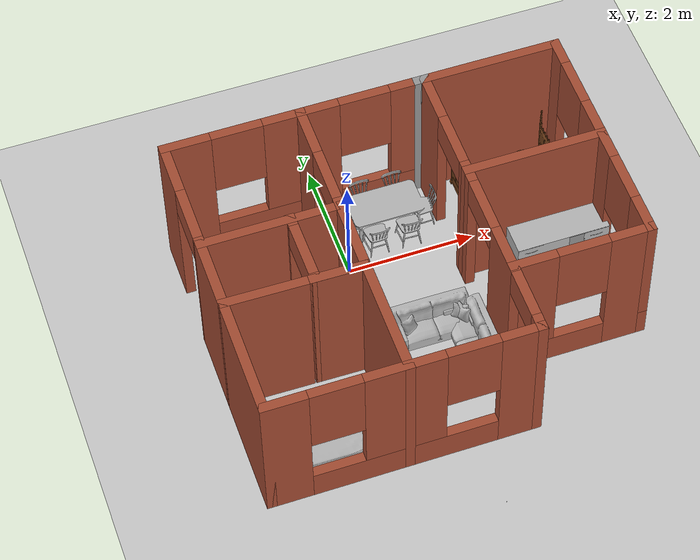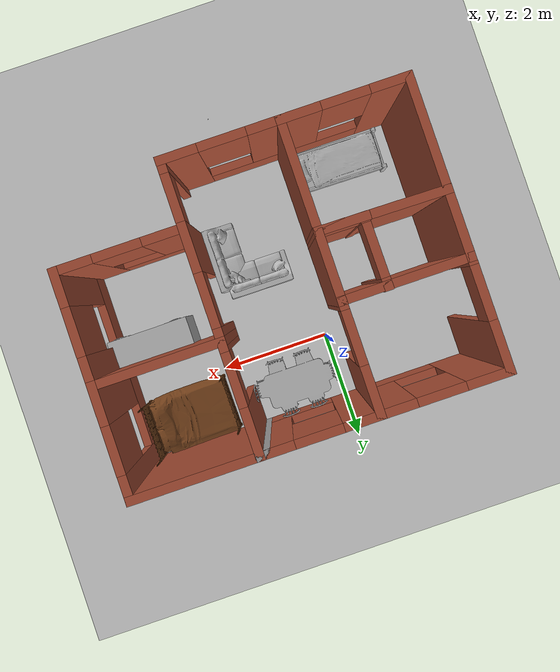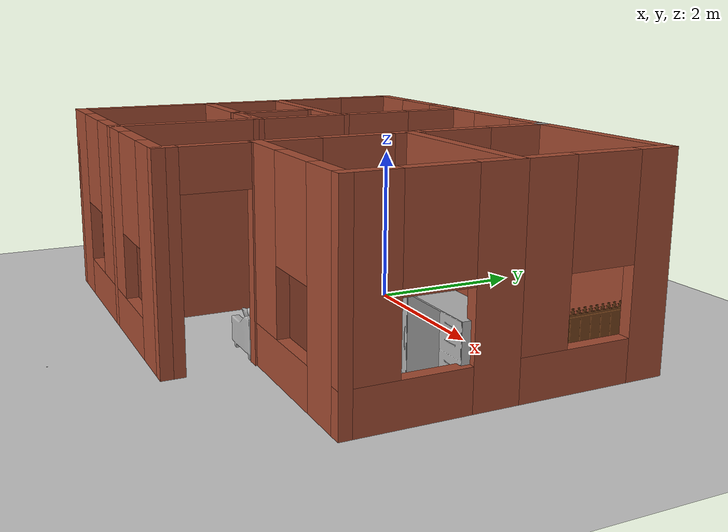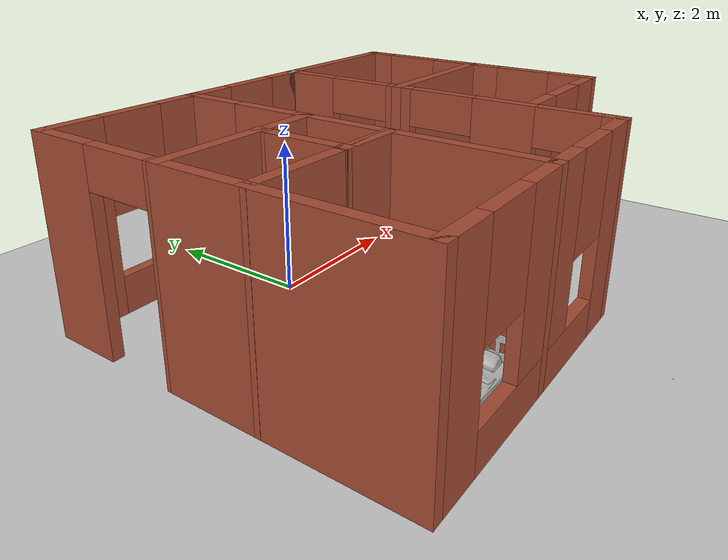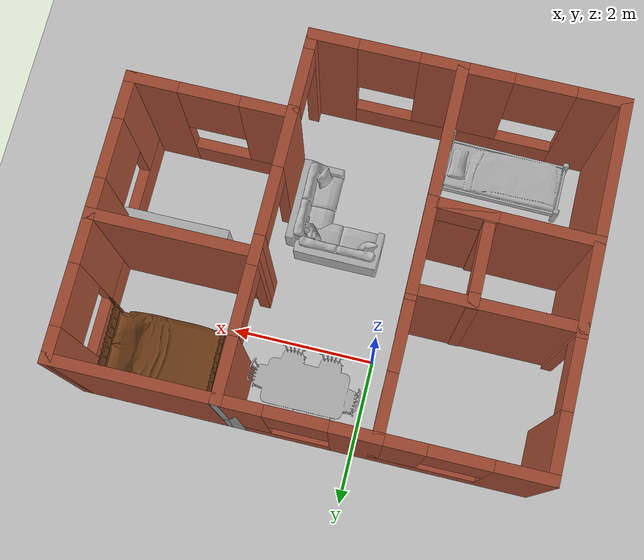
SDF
<sdf version="1.7">
 <world name="default">
  <light name="sun" type="directional">
   <pose>0 0 10 0 -0 0</pose>
   <diffuse>0.8 0.8 0.8 1</diffuse>
   <specular>0.2 0.2 0.2 1</specular>
   <attenuation>
    <range>1000</range>
    <constant>0.9</constant>
    <linear>0.01</linear>
    <quadratic>0.001</quadratic>
   </attenuation>
   <direction>-0.5 0.1 -0.9</direction>
   <spot><inner_angle>0</inner_angle><outer_angle>0</outer_angle><falloff>0</falloff></spot>
  </light>
  <model name="ground_plane">
   <static>1</static>
   <link name="link">
    <collision name="collision">
     <geometry><plane><normal>0 0 1</normal><size>100 100</size></plane></geometry>
     <surface><friction><ode><mu>100</mu><mu2>50</mu2></ode></friction></surface>
    </collision>
    <visual name="visual">
     <cast_shadows>0</cast_shadows>
     <geometry><plane><normal>0 0 1</normal><size>100 100</size></plane></geometry>
     <material>
      <script><uri>file://media/materials/scripts/gazebo.material</uri><name>Gazebo/Grey</name></script>
     </material>
    </visual>
   </link>
  </model>
  <gravity>0 0 -9.8</gravity>
  <magnetic_field>6e-06 2.3e-05 -4.2e-05</magnetic_field>
  <atmosphere type="adiabatic"/>
  <physics type="ode">
   <max_step_size>0.001</max_step_size>
   <real_time_factor>1</real_time_factor>
   <real_time_update_rate>1000</real_time_update_rate>
  </physics>
  <scene><ambient>0.4 0.4 0.4 1</ambient><background>0.7 0.7 0.7 1</background><shadows>1</shadows></scene>
  <audio><device>default</device></audio>
  <spherical_coordinates>
   <surface_model>EARTH_WGS84</surface_model>
   <latitude_deg>0</latitude_deg>
   <longitude_deg>0</longitude_deg>
   <elevation>0</elevation>
   <heading_deg>0</heading_deg>
  </spherical_coordinates>
  <model name="2house">
   <pose>0.680679 -1.14984 0 0 -0 0</pose>
   <link name="Wall_0">
    <collision name="Wall_0_Collision">
     <geometry><box><size>2 0.15 2.5</size></box></geometry>
     <pose>0 0 1.25 0 -0 0</pose>
    </collision>
    <visual name="Wall_0_Visual">
     <pose>0 0 1.25 0 -0 0</pose>
     <geometry><box><size>2 0.15 2.5</size></box></geometry>
     <material>
      <script><uri>file://media/materials/scripts/gazebo.material</uri><name>Gazebo/Bricks</name></script>
      <ambient>1 1 1 1</ambient>
     </material>
     <meta><layer>0</layer></meta>
    </visual>
    <pose>-3.07947 -1.47497 0 0 -0 -1.5708</pose>
   </link>
   <link name="Wall_1">
    <pose>-2.02947 -2.39997 0 0 -0 0</pose>
    <visual name="Wall_1_Visual_0">
     <pose>-0.770774 0 1.25 0 -0 0</pose>
     <geometry><box><size>0.708452 0.15 2.5</size></box></geometry>
     <material>
      <script><uri>file://media/materials/scripts/gazebo.material</uri><name>Gazebo/Bricks</name></script>
      <ambient>1 1 1 1</ambient>
     </material>
     <meta><layer>0</layer></meta>
    </visual>
    <collision name="Wall_1_Collision_0">
     <geometry><box><size>0.708452 0.15 2.5</size></box></geometry>
     <pose>-0.770774 0 1.25 0 -0 0</pose>
    </collision>
    <visual name="Wall_1_Visual_1">
     <pose>0.354226 0 0.25 0 -0 0</pose>
     <geometry><box><size>1.54155 0.15 0.5</size></box></geometry>
     <material>
      <script><uri>file://media/materials/scripts/gazebo.material</uri><name>Gazebo/Bricks</name></script>
      <ambient>1 1 1 1</ambient>
     </material>
     <meta><layer>0</layer></meta>
    </visual>
    <collision name="Wall_1_Collision_1">
     <geometry><box><size>1.54155 0.15 0.5</size></box></geometry>
     <pose>0.354226 0 0.25 0 -0 0</pose>
    </collision>
    <visual name="Wall_1_Visual_2">
     <pose>0.754226 0 1.5 0 -0 0</pose>
     <geometry><box><size>0.741548 0.15 2</size></box></geometry>
     <material>
      <script><uri>file://media/materials/scripts/gazebo.material</uri><name>Gazebo/Bricks</name></script>
      <ambient>1 1 1 1</ambient>
     </material>
     <meta><layer>0</layer></meta>
    </visual>
    <collision name="Wall_1_Collision_2">
     <geometry><box><size>0.741548 0.15 2</size></box></geometry>
     <pose>0.754226 0 1.5 0 -0 0</pose>
    </collision>
    <visual name="Wall_1_Visual_3">
     <pose>-0.016548 0 1.9 0 -0 0</pose>
     <geometry><box><size>0.8 0.15 1.2</size></box></geometry>
     <material>
      <script><uri>file://media/materials/scripts/gazebo.material</uri><name>Gazebo/Bricks</name></script>
      <ambient>1 1 1 1</ambient>
     </material>
     <meta><layer>0</layer></meta>
    </visual>
    <collision name="Wall_1_Collision_3">
     <geometry><box><size>0.8 0.15 1.2</size></box></geometry>
     <pose>-0.016548 0 1.9 0 -0 0</pose>
    </collision>
   </link>
   <link name="Wall_17">
    <collision name="Wall_17_Collision">
     <geometry><box><size>1.25 0.15 2.5</size></box></geometry>
     <pose>0 0 1.25 0 -0 0</pose>
    </collision>
    <visual name="Wall_17_Visual">
     <pose>0 0 1.25 0 -0 0</pose>
     <geometry><box><size>1.25 0.15 2.5</size></box></geometry>
     <material>
      <script><uri>file://media/materials/scripts/gazebo.material</uri><name>Gazebo/Bricks</name></script>
      <ambient>1 1 1 1</ambient>
     </material>
     <meta><layer>0</layer></meta>
    </visual>
    <pose>-3.07947 2.7e-05 0 0 -0 1.5708</pose>
   </link>
   <link name="Wall_18">
    <collision name="Wall_18_Collision">
     <geometry><box><size>2.25 0.15 2.5</size></box></geometry>
     <pose>0 0 1.25 0 -0 0</pose>
    </collision>
    <visual name="Wall_18_Visual">
     <pose>0 0 1.25 0 -0 0</pose>
     <geometry><box><size>2.25 0.15 2.5</size></box></geometry>
     <material>
      <script><uri>file://media/materials/scripts/gazebo.material</uri><name>Gazebo/Bricks</name></script>
      <ambient>1 1 1 1</ambient>
     </material>
     <meta><layer>0</layer></meta>
    </visual>
    <pose>-2.02947 0.550027 0 0 -0 0</pose>
   </link>
   <link name="Wall_19">
    <collision name="Wall_19_Collision">
     <geometry><box><size>1.28018 0.15 2.5</size></box></geometry>
     <pose>0 0 1.25 0 -0 0</pose>
    </collision>
    <visual name="Wall_19_Visual">
     <pose>0 0 1.25 0 -0 0</pose>
     <geometry><box><size>1.28018 0.15 2.5</size></box></geometry>
     <material>
      <script><uri>file://media/materials/scripts/gazebo.material</uri><name>Gazebo/Bricks</name></script>
      <ambient>1 1 1 1</ambient>
     </material>
     <meta><layer>0</layer></meta>
    </visual>
    <pose>-0.979468 -0.014973 0 0 -0 -1.5708</pose>
   </link>
   <link name="Wall_2">
    <collision name="Wall_2_Collision">
     <geometry><box><size>1.97011 0.15 2.5</size></box></geometry>
     <pose>0 0 1.25 0 -0 0</pose>
    </collision>
    <visual name="Wall_2_Visual">
     <pose>0 0 1.25 0 -0 0</pose>
     <geometry><box><size>1.97011 0.15 2.5</size></box></geometry>
     <material>
      <script><uri>file://media/materials/scripts/gazebo.material</uri><name>Gazebo/Bricks</name></script>
      <ambient>1 1 1 1</ambient>
     </material>
     <meta><layer>0</layer></meta>
    </visual>
    <pose>-0.979468 -1.48997 0 0 -0 1.5708</pose>
   </link>
   <link name="Wall_20">
    <collision name="Wall_20_Collision">
     <geometry><box><size>0.890068 0.15 2.5</size></box></geometry>
     <pose>0 0 1.25 0 -0 0</pose>
    </collision>
    <visual name="Wall_20_Visual">
     <pose>0 0 1.25 0 -0 0</pose>
     <geometry><box><size>0.890068 0.15 2.5</size></box></geometry>
     <material>
      <script><uri>file://media/materials/scripts/gazebo.material</uri><name>Gazebo/Bricks</name></script>
      <ambient>1 1 1 1</ambient>
     </material>
     <meta><layer>0</layer></meta>
    </visual>
    <pose>-1.35947 -0.574973 0 0 -0 3.12808</pose>
   </link>
   <link name="Wall_21">
    <pose>-1.72447 -0.004973 0 0 -0 1.57965</pose>
    <visual name="Wall_21_Visual_0">
     <pose>-0.55431 0 1.25 0 -0 0</pose>
     <geometry><box><size>0.171424 0.15 2.5</size></box></geometry>
     <material>
      <script><uri>file://media/materials/scripts/gazebo.material</uri><name>Gazebo/Bricks</name></script>
      <ambient>1 1 1 1</ambient>
     </material>
     <meta><layer>0</layer></meta>
    </visual>
    <collision name="Wall_21_Collision_0">
     <geometry><box><size>0.171424 0.15 2.5</size></box></geometry>
     <pose>-0.55431 0 1.25 0 -0 0</pose>
    </collision>
    <visual name="Wall_21_Visual_1">
     <pose>0.535712 0 1.25 0 -0 0</pose>
     <geometry><box><size>0.20862 0.15 2.5</size></box></geometry>
     <material>
      <script><uri>file://media/materials/scripts/gazebo.material</uri><name>Gazebo/Bricks</name></script>
      <ambient>1 1 1 1</ambient>
     </material>
     <meta><layer>0</layer></meta>
    </visual>
    <collision name="Wall_21_Collision_1">
     <geometry><box><size>0.20862 0.15 2.5</size></box></geometry>
     <pose>0.535712 0 1.25 0 -0 0</pose>
    </collision>
    <visual name="Wall_21_Visual_2">
     <pose>-0.018598 0 2.25 0 -0 0</pose>
     <geometry><box><size>0.9 0.15 0.5</size></box></geometry>
     <material>
      <script><uri>file://media/materials/scripts/gazebo.material</uri><name>Gazebo/Bricks</name></script>
      <ambient>1 1 1 1</ambient>
     </material>
     <meta><layer>0</layer></meta>
    </visual>
    <collision name="Wall_21_Collision_2">
     <geometry><box><size>0.9 0.15 0.5</size></box></geometry>
     <pose>-0.018598 0 2.25 0 -0 0</pose>
    </collision>
   </link>
   <link name="Wall_23">
    <pose>-3.07947 1.47503 0 0 -0 1.5708</pose>
    <visual name="Wall_23_Visual_0">
     <pose>-0.89882 0 1.25 0 -0 0</pose>
     <geometry><box><size>0.202361 0.15 2.5</size></box></geometry>
     <material>
      <script><uri>file://media/materials/scripts/gazebo.material</uri><name>Gazebo/Bricks</name></script>
      <ambient>1 1 1 1</ambient>
     </material>
     <meta><layer>0</layer></meta>
    </visual>
    <collision name="Wall_23_Collision_0">
     <geometry><box><size>0.202361 0.15 2.5</size></box></geometry>
     <pose>-0.89882 0 1.25 0 -0 0</pose>
    </collision>
    <visual name="Wall_23_Visual_1">
     <pose>0.55118 0 1.25 0 -0 0</pose>
     <geometry><box><size>0.897639 0.15 2.5</size></box></geometry>
     <material>
      <script><uri>file://media/materials/scripts/gazebo.material</uri><name>Gazebo/Bricks</name></script>
      <ambient>1 1 1 1</ambient>
     </material>
     <meta><layer>0</layer></meta>
    </visual>
    <collision name="Wall_23_Collision_1">
     <geometry><box><size>0.897639 0.15 2.5</size></box></geometry>
     <pose>0.55118 0 1.25 0 -0 0</pose>
    </collision>
    <visual name="Wall_23_Visual_2">
     <pose>-0.347639 0 2.25 0 -0 0</pose>
     <geometry><box><size>0.9 0.15 0.5</size></box></geometry>
     <material>
      <script><uri>file://media/materials/scripts/gazebo.material</uri><name>Gazebo/Bricks</name></script>
      <ambient>1 1 1 1</ambient>
     </material>
     <meta><layer>0</layer></meta>
    </visual>
    <collision name="Wall_23_Collision_2">
     <geometry><box><size>0.9 0.15 0.5</size></box></geometry>
     <pose>-0.347639 0 2.25 0 -0 0</pose>
    </collision>
   </link>
   <link name="Wall_25">
    <pose>-2.02947 2.40003 0 0 -0 0</pose>
    <visual name="Wall_25_Visual_0">
     <pose>-0.735774 0 1.25 0 -0 0</pose>
     <geometry><box><size>0.778452 0.15 2.5</size></box></geometry>
     <material>
      <script><uri>file://media/materials/scripts/gazebo.material</uri><name>Gazebo/Bricks</name></script>
      <ambient>1 1 1 1</ambient>
     </material>
     <meta><layer>0</layer></meta>
    </visual>
    <collision name="Wall_25_Collision_0">
     <geometry><box><size>0.778452 0.15 2.5</size></box></geometry>
     <pose>-0.735774 0 1.25 0 -0 0</pose>
    </collision>
    <visual name="Wall_25_Visual_1">
     <pose>0.389226 0 0.25 0 -0 0</pose>
     <geometry><box><size>1.47155 0.15 0.5</size></box></geometry>
     <material>
      <script><uri>file://media/materials/scripts/gazebo.material</uri><name>Gazebo/Bricks</name></script>
      <ambient>1 1 1 1</ambient>
     </material>
     <meta><layer>0</layer></meta>
    </visual>
    <collision name="Wall_25_Collision_1">
     <geometry><box><size>1.47155 0.15 0.5</size></box></geometry>
     <pose>0.389226 0 0.25 0 -0 0</pose>
    </collision>
    <visual name="Wall_25_Visual_2">
     <pose>0.789226 0 1.5 0 -0 0</pose>
     <geometry><box><size>0.671548 0.15 2</size></box></geometry>
     <material>
      <script><uri>file://media/materials/scripts/gazebo.material</uri><name>Gazebo/Bricks</name></script>
      <ambient>1 1 1 1</ambient>
     </material>
     <meta><layer>0</layer></meta>
    </visual>
    <collision name="Wall_25_Collision_2">
     <geometry><box><size>0.671548 0.15 2</size></box></geometry>
     <pose>0.789226 0 1.5 0 -0 0</pose>
    </collision>
    <visual name="Wall_25_Visual_3">
     <pose>0.053452 0 1.9 0 -0 0</pose>
     <geometry><box><size>0.8 0.15 1.2</size></box></geometry>
     <material>
      <script><uri>file://media/materials/scripts/gazebo.material</uri><name>Gazebo/Bricks</name></script>
      <ambient>1 1 1 1</ambient>
     </material>
     <meta><layer>0</layer></meta>
    </visual>
    <collision name="Wall_25_Collision_3">
     <geometry><box><size>0.8 0.15 1.2</size></box></geometry>
     <pose>0.053452 0 1.9 0 -0 0</pose>
    </collision>
   </link>
   <link name="Wall_26">
    <pose>-0.979468 1.47503 0 0 -0 -1.5708</pose>
    <visual name="Wall_26_Visual_0">
     <pose>-0.56118 0 1.25 0 -0 0</pose>
     <geometry><box><size>0.877639 0.15 2.5</size></box></geometry>
     <material>
      <script><uri>file://media/materials/scripts/gazebo.material</uri><name>Gazebo/Bricks</name></script>
      <ambient>1 1 1 1</ambient>
     </material>
     <meta><layer>0</layer></meta>
    </visual>
    <collision name="Wall_26_Collision_0">
     <geometry><box><size>0.877639 0.15 2.5</size></box></geometry>
     <pose>-0.56118 0 1.25 0 -0 0</pose>
    </collision>
    <visual name="Wall_26_Visual_1">
     <pose>0.88882 0 1.25 0 -0 0</pose>
     <geometry><box><size>0.222361 0.15 2.5</size></box></geometry>
     <material>
      <script><uri>file://media/materials/scripts/gazebo.material</uri><name>Gazebo/Bricks</name></script>
      <ambient>1 1 1 1</ambient>
     </material>
     <meta><layer>0</layer></meta>
    </visual>
    <collision name="Wall_26_Collision_1">
     <geometry><box><size>0.222361 0.15 2.5</size></box></geometry>
     <pose>0.88882 0 1.25 0 -0 0</pose>
    </collision>
    <visual name="Wall_26_Visual_2">
     <pose>0.327639 0 2.25 0 -0 0</pose>
     <geometry><box><size>0.9 0.15 0.5</size></box></geometry>
     <material>
      <script><uri>file://media/materials/scripts/gazebo.material</uri><name>Gazebo/Bricks</name></script>
      <ambient>1 1 1 1</ambient>
     </material>
     <meta><layer>0</layer></meta>
    </visual>
    <collision name="Wall_26_Collision_2">
     <geometry><box><size>0.9 0.15 0.5</size></box></geometry>
     <pose>0.327639 0 2.25 0 -0 0</pose>
    </collision>
   </link>
   <link name="Wall_3">
    <pose>-2.02947 -0.564973 0 0 -0 3.12731</pose>
    <visual name="Wall_3_Visual_0">
     <pose>-1.11431 0 1.25 0 -0 0</pose>
     <geometry><box><size>0.021588 0.15 2.5</size></box></geometry>
     <material>
      <script><uri>file://media/materials/scripts/gazebo.material</uri><name>Gazebo/Bricks</name></script>
      <ambient>1 1 1 1</ambient>
     </material>
     <meta><layer>0</layer></meta>
    </visual>
    <collision name="Wall_3_Collision_0">
     <geometry><box><size>0.021588 0.15 2.5</size></box></geometry>
     <pose>-1.11431 0 1.25 0 -0 0</pose>
    </collision>
    <visual name="Wall_3_Visual_1">
     <pose>0.460794 0 1.25 0 -0 0</pose>
     <geometry><box><size>1.32863 0.15 2.5</size></box></geometry>
     <material>
      <script><uri>file://media/materials/scripts/gazebo.material</uri><name>Gazebo/Bricks</name></script>
      <ambient>1 1 1 1</ambient>
     </material>
     <meta><layer>0</layer></meta>
    </visual>
    <collision name="Wall_3_Collision_1">
     <geometry><box><size>1.32863 0.15 2.5</size></box></geometry>
     <pose>0.460794 0 1.25 0 -0 0</pose>
    </collision>
    <visual name="Wall_3_Visual_2">
     <pose>-0.653519 0 2.25 0 -0 0</pose>
     <geometry><box><size>0.9 0.15 0.5</size></box></geometry>
     <material>
      <script><uri>file://media/materials/scripts/gazebo.material</uri><name>Gazebo/Bricks</name></script>
      <ambient>1 1 1 1</ambient>
     </material>
     <meta><layer>0</layer></meta>
    </visual>
    <collision name="Wall_3_Collision_2">
     <geometry><box><size>0.9 0.15 0.5</size></box></geometry>
     <pose>-0.653519 0 2.25 0 -0 0</pose>
    </collision>
   </link>
   <link name="Wall_30">
    <pose>-0.054468 2.40003 0 0 -0 0</pose>
    <visual name="Wall_30_Visual_0">
     <pose>-0.665774 0 1.25 0 -0 0</pose>
     <geometry><box><size>0.668452 0.15 2.5</size></box></geometry>
     <material>
      <script><uri>file://media/materials/scripts/gazebo.material</uri><name>Gazebo/Bricks</name></script>
      <ambient>1 1 1 1</ambient>
     </material>
     <meta><layer>0</layer></meta>
    </visual>
    <collision name="Wall_30_Collision_0">
     <geometry><box><size>0.668452 0.15 2.5</size></box></geometry>
     <pose>-0.665774 0 1.25 0 -0 0</pose>
    </collision>
    <visual name="Wall_30_Visual_1">
     <pose>0.334226 0 0.25 0 -0 0</pose>
     <geometry><box><size>1.33155 0.15 0.5</size></box></geometry>
     <material>
      <script><uri>file://media/materials/scripts/gazebo.material</uri><name>Gazebo/Bricks</name></script>
      <ambient>1 1 1 1</ambient>
     </material>
     <meta><layer>0</layer></meta>
    </visual>
    <collision name="Wall_30_Collision_1">
     <geometry><box><size>1.33155 0.15 0.5</size></box></geometry>
     <pose>0.334226 0 0.25 0 -0 0</pose>
    </collision>
    <visual name="Wall_30_Visual_2">
     <pose>0.734226 0 1.5 0 -0 0</pose>
     <geometry><box><size>0.531548 0.15 2</size></box></geometry>
     <material>
      <script><uri>file://media/materials/scripts/gazebo.material</uri><name>Gazebo/Bricks</name></script>
      <ambient>1 1 1 1</ambient>
     </material>
     <meta><layer>0</layer></meta>
    </visual>
    <collision name="Wall_30_Collision_2">
     <geometry><box><size>0.531548 0.15 2</size></box></geometry>
     <pose>0.734226 0 1.5 0 -0 0</pose>
    </collision>
    <visual name="Wall_30_Visual_3">
     <pose>0.068452 0 1.9 0 -0 0</pose>
     <geometry><box><size>0.8 0.15 1.2</size></box></geometry>
     <material>
      <script><uri>file://media/materials/scripts/gazebo.material</uri><name>Gazebo/Bricks</name></script>
      <ambient>1 1 1 1</ambient>
     </material>
     <meta><layer>0</layer></meta>
    </visual>
    <collision name="Wall_30_Collision_3">
     <geometry><box><size>0.8 0.15 1.2</size></box></geometry>
     <pose>0.068452 0 1.9 0 -0 0</pose>
    </collision>
   </link>
   <link name="Wall_31">
    <collision name="Wall_31_Collision">
     <geometry><box><size>0.25 0.15 2.5</size></box></geometry>
     <pose>0 0 1.25 0 -0 0</pose>
    </collision>
    <visual name="Wall_31_Visual">
     <pose>0 0 1.25 0 -0 0</pose>
     <geometry><box><size>0.25 0.15 2.5</size></box></geometry>
     <material>
      <script><uri>file://media/materials/scripts/gazebo.material</uri><name>Gazebo/Grey</name></script>
      <ambient>1 1 1 1</ambient>
     </material>
     <meta><layer>0</layer></meta>
    </visual>
    <pose>0.920532 2.40003 0 0 -0 0</pose>
   </link>
   <link name="Wall_34">
    <collision name="Wall_34_Collision">
     <geometry><box><size>0.25 0.15 2.5</size></box></geometry>
     <pose>0 0 1.25 0 -0 0</pose>
    </collision>
    <visual name="Wall_34_Visual">
     <pose>0 0 1.25 0 -0 0</pose>
     <geometry><box><size>0.25 0.15 2.5</size></box></geometry>
     <material>
      <script><uri>file://media/materials/scripts/gazebo.material</uri><name>Gazebo/Bricks</name></script>
      <ambient>1 1 1 1</ambient>
     </material>
     <meta><layer>0</layer></meta>
    </visual>
    <pose>0.920532 2.40003 0 0 -0 0</pose>
   </link>
   <link name="Wall_35">
    <collision name="Wall_35_Collision">
     <geometry><box><size>0.16 0.15 2.5</size></box></geometry>
     <pose>0 0 1.25 0 -0 0</pose>
    </collision>
    <visual name="Wall_35_Visual">
     <pose>0 0 1.25 0 -0 0</pose>
     <geometry><box><size>0.16 0.15 2.5</size></box></geometry>
     <material>
      <script><uri>file://media/materials/scripts/gazebo.material</uri><name>Gazebo/Grey</name></script>
      <ambient>1 1 1 1</ambient>
     </material>
     <meta><layer>0</layer></meta>
    </visual>
    <pose>0.975532 2.40003 0 0 -0 0</pose>
   </link>
   <link name="Wall_36">
    <pose>0.980532 2.7e-05 0 0 -0 -1.5708</pose>
    <visual name="Wall_36_Visual_0">
     <pose>-2.04618 0 1.25 0 -0 0</pose>
     <geometry><box><size>0.857639 0.15 2.5</size></box></geometry>
     <material>
      <script><uri>file://media/materials/scripts/gazebo.material</uri><name>Gazebo/Bricks</name></script>
      <ambient>1 1 1 1</ambient>
     </material>
     <meta><layer>0</layer></meta>
    </visual>
    <collision name="Wall_36_Collision_0">
     <geometry><box><size>0.857639 0.15 2.5</size></box></geometry>
     <pose>-2.04618 0 1.25 0 -0 0</pose>
    </collision>
    <visual name="Wall_36_Visual_1">
     <pose>-0.522361 0 1.25 0 -0 0</pose>
     <geometry><box><size>0.39 0.15 2.5</size></box></geometry>
     <material>
      <script><uri>file://media/materials/scripts/gazebo.material</uri><name>Gazebo/Bricks</name></script>
      <ambient>1 1 1 1</ambient>
     </material>
     <meta><layer>0</layer></meta>
    </visual>
    <collision name="Wall_36_Collision_1">
     <geometry><box><size>0.39 0.15 2.5</size></box></geometry>
     <pose>-0.522361 0 1.25 0 -0 0</pose>
    </collision>
    <visual name="Wall_36_Visual_2">
     <pose>0.985139 0 1.25 0 -0 0</pose>
     <geometry><box><size>0.825 0.15 2.5</size></box></geometry>
     <material>
      <script><uri>file://media/materials/scripts/gazebo.material</uri><name>Gazebo/Bricks</name></script>
      <ambient>1 1 1 1</ambient>
     </material>
     <meta><layer>0</layer></meta>
    </visual>
    <collision name="Wall_36_Collision_2">
     <geometry><box><size>0.825 0.15 2.5</size></box></geometry>
     <pose>0.985139 0 1.25 0 -0 0</pose>
    </collision>
    <visual name="Wall_36_Visual_3">
     <pose>2.33132 0 1.25 0 -0 0</pose>
     <geometry><box><size>0.287361 0.15 2.5</size></box></geometry>
     <material>
      <script><uri>file://media/materials/scripts/gazebo.material</uri><name>Gazebo/Bricks</name></script>
      <ambient>1 1 1 1</ambient>
     </material>
     <meta><layer>0</layer></meta>
    </visual>
    <collision name="Wall_36_Collision_3">
     <geometry><box><size>0.287361 0.15 2.5</size></box></geometry>
     <pose>2.33132 0 1.25 0 -0 0</pose>
    </collision>
    <visual name="Wall_36_Visual_4">
     <pose>-1.16736 0 2.25 0 -0 0</pose>
     <geometry><box><size>0.9 0.15 0.5</size></box></geometry>
     <material>
      <script><uri>file://media/materials/scripts/gazebo.material</uri><name>Gazebo/Bricks</name></script>
      <ambient>1 1 1 1</ambient>
     </material>
     <meta><layer>0</layer></meta>
    </visual>
    <collision name="Wall_36_Collision_4">
     <geometry><box><size>0.9 0.15 0.5</size></box></geometry>
     <pose>-1.16736 0 2.25 0 -0 0</pose>
    </collision>
    <visual name="Wall_36_Visual_5">
     <pose>0.122639 0 2.25 0 -0 0</pose>
     <geometry><box><size>0.9 0.15 0.5</size></box></geometry>
     <material>
      <script><uri>file://media/materials/scripts/gazebo.material</uri><name>Gazebo/Bricks</name></script>
      <ambient>1 1 1 1</ambient>
     </material>
     <meta><layer>0</layer></meta>
    </visual>
    <collision name="Wall_36_Collision_5">
     <geometry><box><size>0.9 0.15 0.5</size></box></geometry>
     <pose>0.122639 0 2.25 0 -0 0</pose>
    </collision>
    <visual name="Wall_36_Visual_6">
     <pose>1.79264 0 2.25 0 -0 0</pose>
     <geometry><box><size>0.79 0.15 0.5</size></box></geometry>
     <material>
      <script><uri>file://media/materials/scripts/gazebo.material</uri><name>Gazebo/Bricks</name></script>
      <ambient>1 1 1 1</ambient>
     </material>
     <meta><layer>0</layer></meta>
    </visual>
    <collision name="Wall_36_Collision_6">
     <geometry><box><size>0.79 0.15 0.5</size></box></geometry>
     <pose>1.79264 0 2.25 0 -0 0</pose>
    </collision>
   </link>
   <link name="Wall_37">
    <pose>0.000532 -2.39997 0 0 -0 -3.14159</pose>
    <visual name="Wall_37_Visual_0">
     <pose>-0.714386 0 1.25 0 -0 0</pose>
     <geometry><box><size>0.681866 0.15 2.5</size></box></geometry>
     <material>
      <script><uri>file://media/materials/scripts/gazebo.material</uri><name>Gazebo/Bricks</name></script>
      <ambient>1 1 1 1</ambient>
     </material>
     <meta><layer>0</layer></meta>
    </visual>
    <collision name="Wall_37_Collision_0">
     <geometry><box><size>0.681866 0.15 2.5</size></box></geometry>
     <pose>-0.714386 0 1.25 0 -0 0</pose>
    </collision>
    <visual name="Wall_37_Visual_1">
     <pose>0.340933 0 0.25 0 -0 0</pose>
     <geometry><box><size>1.42877 0.15 0.5</size></box></geometry>
     <material>
      <script><uri>file://media/materials/scripts/gazebo.material</uri><name>Gazebo/Bricks</name></script>
      <ambient>1 1 1 1</ambient>
     </material>
     <meta><layer>0</layer></meta>
    </visual>
    <collision name="Wall_37_Collision_1">
     <geometry><box><size>1.42877 0.15 0.5</size></box></geometry>
     <pose>0.340933 0 0.25 0 -0 0</pose>
    </collision>
    <visual name="Wall_37_Visual_2">
     <pose>0.740933 0 1.5 0 -0 0</pose>
     <geometry><box><size>0.628771 0.15 2</size></box></geometry>
     <material>
      <script><uri>file://media/materials/scripts/gazebo.material</uri><name>Gazebo/Bricks</name></script>
      <ambient>1 1 1 1</ambient>
     </material>
     <meta><layer>0</layer></meta>
    </visual>
    <collision name="Wall_37_Collision_2">
     <geometry><box><size>0.628771 0.15 2</size></box></geometry>
     <pose>0.740933 0 1.5 0 -0 0</pose>
    </collision>
    <visual name="Wall_37_Visual_3">
     <pose>0.026548 0 1.9 0 -0 0</pose>
     <geometry><box><size>0.8 0.15 1.2</size></box></geometry>
     <material>
      <script><uri>file://media/materials/scripts/gazebo.material</uri><name>Gazebo/Bricks</name></script>
      <ambient>1 1 1 1</ambient>
     </material>
     <meta><layer>0</layer></meta>
    </visual>
    <collision name="Wall_37_Collision_3">
     <geometry><box><size>0.8 0.15 1.2</size></box></geometry>
     <pose>0.026548 0 1.9 0 -0 0</pose>
    </collision>
   </link>
   <link name="Wall_40">
    <collision name="Wall_40_Collision">
     <geometry><box><size>2.25 0.15 2.5</size></box></geometry>
     <pose>0 0 1.25 0 -0 0</pose>
    </collision>
    <visual name="Wall_40_Visual">
     <pose>0 0 1.25 0 -0 0</pose>
     <geometry><box><size>2.25 0.15 2.5</size></box></geometry>
     <material>
      <script><uri>file://media/materials/scripts/gazebo.material</uri><name>Gazebo/Bricks</name></script>
      <ambient>1 1 1 1</ambient>
     </material>
     <meta><layer>0</layer></meta>
    </visual>
    <pose>2.03053 2.40003 0 0 -0 0</pose>
   </link>
   <link name="Wall_41">
    <pose>3.08053 1.47503 0 0 -0 -1.5708</pose>
    <visual name="Wall_41_Visual_0">
     <pose>-0.76118 0 1.25 0 -0 0</pose>
     <geometry><box><size>0.477639 0.15 2.5</size></box></geometry>
     <material>
      <script><uri>file://media/materials/scripts/gazebo.material</uri><name>Gazebo/Bricks</name></script>
      <ambient>1 1 1 1</ambient>
     </material>
     <meta><layer>0</layer></meta>
    </visual>
    <collision name="Wall_41_Collision_0">
     <geometry><box><size>0.477639 0.15 2.5</size></box></geometry>
     <pose>-0.76118 0 1.25 0 -0 0</pose>
    </collision>
    <visual name="Wall_41_Visual_1">
     <pose>0.23882 0 0.25 0 -0 0</pose>
     <geometry><box><size>1.52236 0.15 0.5</size></box></geometry>
     <material>
      <script><uri>file://media/materials/scripts/gazebo.material</uri><name>Gazebo/Bricks</name></script>
      <ambient>1 1 1 1</ambient>
     </material>
     <meta><layer>0</layer></meta>
    </visual>
    <collision name="Wall_41_Collision_1">
     <geometry><box><size>1.52236 0.15 0.5</size></box></geometry>
     <pose>0.23882 0 0.25 0 -0 0</pose>
    </collision>
    <visual name="Wall_41_Visual_2">
     <pose>0.63882 0 1.5 0 -0 0</pose>
     <geometry><box><size>0.722361 0.15 2</size></box></geometry>
     <material>
      <script><uri>file://media/materials/scripts/gazebo.material</uri><name>Gazebo/Bricks</name></script>
      <ambient>1 1 1 1</ambient>
     </material>
     <meta><layer>0</layer></meta>
    </visual>
    <collision name="Wall_41_Collision_2">
     <geometry><box><size>0.722361 0.15 2</size></box></geometry>
     <pose>0.63882 0 1.5 0 -0 0</pose>
    </collision>
    <visual name="Wall_41_Visual_3">
     <pose>-0.122361 0 1.9 0 -0 0</pose>
     <geometry><box><size>0.8 0.15 1.2</size></box></geometry>
     <material>
      <script><uri>file://media/materials/scripts/gazebo.material</uri><name>Gazebo/Bricks</name></script>
      <ambient>1 1 1 1</ambient>
     </material>
     <meta><layer>0</layer></meta>
    </visual>
    <collision name="Wall_41_Collision_3">
     <geometry><box><size>0.8 0.15 1.2</size></box></geometry>
     <pose>-0.122361 0 1.9 0 -0 0</pose>
    </collision>
   </link>
   <link name="Wall_42">
    <collision name="Wall_42_Collision">
     <geometry><box><size>2.25 0.15 2.5</size></box></geometry>
     <pose>0 0 1.25 0 -0 0</pose>
    </collision>
    <visual name="Wall_42_Visual">
     <pose>0 0 1.25 0 -0 0</pose>
     <geometry><box><size>2.25 0.15 2.5</size></box></geometry>
     <material>
      <script><uri>file://media/materials/scripts/gazebo.material</uri><name>Gazebo/Bricks</name></script>
      <ambient>1 1 1 1</ambient>
     </material>
     <meta><layer>0</layer></meta>
    </visual>
    <pose>2.03053 0.550027 0 0 -0 3.14159</pose>
   </link>
   <link name="Wall_44">
    <pose>3.08053 -0.374973 0 0 -0 -1.5708</pose>
    <visual name="Wall_44_Visual_0">
     <pose>-0.72618 0 1.25 0 -0 0</pose>
     <geometry><box><size>0.547639 0.15 2.5</size></box></geometry>
     <material>
      <script><uri>file://media/materials/scripts/gazebo.material</uri><name>Gazebo/Bricks</name></script>
      <ambient>1 1 1 1</ambient>
     </material>
     <meta><layer>0</layer></meta>
    </visual>
    <collision name="Wall_44_Collision_0">
     <geometry><box><size>0.547639 0.15 2.5</size></box></geometry>
     <pose>-0.72618 0 1.25 0 -0 0</pose>
    </collision>
    <visual name="Wall_44_Visual_1">
     <pose>0.27382 0 0.25 0 -0 0</pose>
     <geometry><box><size>1.45236 0.15 0.5</size></box></geometry>
     <material>
      <script><uri>file://media/materials/scripts/gazebo.material</uri><name>Gazebo/Bricks</name></script>
      <ambient>1 1 1 1</ambient>
     </material>
     <meta><layer>0</layer></meta>
    </visual>
    <collision name="Wall_44_Collision_1">
     <geometry><box><size>1.45236 0.15 0.5</size></box></geometry>
     <pose>0.27382 0 0.25 0 -0 0</pose>
    </collision>
    <visual name="Wall_44_Visual_2">
     <pose>0.67382 0 1.5 0 -0 0</pose>
     <geometry><box><size>0.652361 0.15 2</size></box></geometry>
     <material>
      <script><uri>file://media/materials/scripts/gazebo.material</uri><name>Gazebo/Bricks</name></script>
      <ambient>1 1 1 1</ambient>
     </material>
     <meta><layer>0</layer></meta>
    </visual>
    <collision name="Wall_44_Collision_2">
     <geometry><box><size>0.652361 0.15 2</size></box></geometry>
     <pose>0.67382 0 1.5 0 -0 0</pose>
    </collision>
    <visual name="Wall_44_Visual_3">
     <pose>-0.052361 0 1.9 0 -0 0</pose>
     <geometry><box><size>0.8 0.15 1.2</size></box></geometry>
     <material>
      <script><uri>file://media/materials/scripts/gazebo.material</uri><name>Gazebo/Bricks</name></script>
      <ambient>1 1 1 1</ambient>
     </material>
     <meta><layer>0</layer></meta>
    </visual>
    <collision name="Wall_44_Collision_3">
     <geometry><box><size>0.8 0.15 1.2</size></box></geometry>
     <pose>-0.052361 0 1.9 0 -0 0</pose>
    </collision>
   </link>
   <link name="Wall_45">
    <pose>2.03053 -1.29997 0 0 -0 3.14159</pose>
    <visual name="Wall_45_Visual_0">
     <pose>-0.774226 0 1.25 0 -0 0</pose>
     <geometry><box><size>0.701548 0.15 2.5</size></box></geometry>
     <material>
      <script><uri>file://media/materials/scripts/gazebo.material</uri><name>Gazebo/Bricks</name></script>
      <ambient>1 1 1 1</ambient>
     </material>
     <meta><layer>0</layer></meta>
    </visual>
    <collision name="Wall_45_Collision_0">
     <geometry><box><size>0.701548 0.15 2.5</size></box></geometry>
     <pose>-0.774226 0 1.25 0 -0 0</pose>
    </collision>
    <visual name="Wall_45_Visual_1">
     <pose>0.350774 0 0.25 0 -0 0</pose>
     <geometry><box><size>1.54845 0.15 0.5</size></box></geometry>
     <material>
      <script><uri>file://media/materials/scripts/gazebo.material</uri><name>Gazebo/Bricks</name></script>
      <ambient>1 1 1 1</ambient>
     </material>
     <meta><layer>0</layer></meta>
    </visual>
    <collision name="Wall_45_Collision_1">
     <geometry><box><size>1.54845 0.15 0.5</size></box></geometry>
     <pose>0.350774 0 0.25 0 -0 0</pose>
    </collision>
    <visual name="Wall_45_Visual_2">
     <pose>0.750774 0 1.5 0 -0 0</pose>
     <geometry><box><size>0.748452 0.15 2</size></box></geometry>
     <material>
      <script><uri>file://media/materials/scripts/gazebo.material</uri><name>Gazebo/Bricks</name></script>
      <ambient>1 1 1 1</ambient>
     </material>
     <meta><layer>0</layer></meta>
    </visual>
    <collision name="Wall_45_Collision_2">
     <geometry><box><size>0.748452 0.15 2</size></box></geometry>
     <pose>0.750774 0 1.5 0 -0 0</pose>
    </collision>
    <visual name="Wall_45_Visual_3">
     <pose>-0.023452 0 1.9 0 -0 0</pose>
     <geometry><box><size>0.8 0.15 1.2</size></box></geometry>
     <material>
      <script><uri>file://media/materials/scripts/gazebo.material</uri><name>Gazebo/Bricks</name></script>
      <ambient>1 1 1 1</ambient>
     </material>
     <meta><layer>0</layer></meta>
    </visual>
    <collision name="Wall_45_Collision_3">
     <geometry><box><size>0.8 0.15 1.2</size></box></geometry>
     <pose>-0.023452 0 1.9 0 -0 0</pose>
    </collision>
   </link>
   <static>1</static>
  </model>
  <model name="bed_1">
   <static>1</static>
   <link name="link">
    <visual name="visual">
     <geometry>
      <mesh>
       <uri>/home/abin/Projects/wifi_sensing_ros2/assets/models/bed/GothicBed_01_4k.dae</uri>
       <scale>0.75 0.75 0.75</scale>
      </mesh>
     </geometry>
     <material>
      <ambient>0.45 0.25 0.1 1</ambient>
      <diffuse>0.45 0.25 0.1 1</diffuse>
      <specular>0.05 0.05 0.05 1</specular>
     </material>
    </visual>
    <collision name="collision"><geometry><box><size>2.2 1.8 1</size></box></geometry></collision>
   </link>
   <pose>2.80117 0.644946 0 0 0 -1.5539</pose>
  </model>
  <model name="sofa">
   <static>1</static>
   <link name="link">
    <visual name="visual">
     <geometry><mesh><uri>model://sofa/sofa.dae</uri><scale>0.015 0.015 0.015</scale></mesh></geometry>
    </visual>
    <collision name="collision"><geometry><mesh><uri>model://sofa/sofa.dae</uri></mesh></geometry></collision>
   </link>
   <pose>0.832894 -1.49301 0 0 -0 1.56583</pose>
  </model>
  <model name="sofa_0">
   <static>1</static>
   <link name="link">
    <visual name="visual">
     <geometry><mesh><uri>model://sofa/sofa.dae</uri><scale>0.015 0.015 0.015</scale></mesh></geometry>
    </visual>
    <collision name="collision"><geometry><mesh><uri>model://sofa/sofa.dae</uri></mesh></geometry></collision>
   </link>
   <pose>1.29783 -1.97286 0 0 -0 0</pose>
  </model>
  <model name="table_and_chairs_0">
   <static>1</static>
   <link name="link">
    <visual name="visual">
     <geometry>
      <mesh><uri>model://table_and_chairs/table_and_chairs.dae</uri><scale>0.75 0.75 0.75</scale></mesh>
     </geometry>
    </visual>
    <collision name="collision">
     <geometry><mesh><uri>model://table_and_chairs/table_and_chairs.dae</uri></mesh></geometry>
    </collision>
   </link>
   <pose>0.794959 0.634026 0 0 -0 0</pose>
  </model>
  <model name="old_bed_2">
   <static>1</static>
   <link name="link">
    <visual name="visual">
     <geometry><mesh><uri>model://old_bed/old_bed.dae</uri><scale>0.01 0.01 0.01</scale></mesh></geometry>
    </visual>
    <collision name="collision">
     <geometry><mesh><uri>model://old_bed/old_bed.dae</uri></mesh></geometry>
    </collision>
   </link>
   <pose>0.801188 -4.65633 0 0 -0 0</pose>
  </model>
  <model name="old_bed">
   <static>1</static>
   <link name="link">
    <visual name="visual"><geometry><mesh><uri>model://old_bed/old_bed.dae</uri></mesh></geometry></visual>
    <collision name="collision">
     <geometry><mesh><uri>model://old_bed/old_bed.dae</uri></mesh></geometry>
    </collision>
   </link>
   <pose>-1.2207 -3.02337 0 0 0 -1.58768</pose>
  </model>
  <model name="table">
   <static>1</static>
   <link name="link">
    <visual name="visual">
     <geometry><mesh><uri>model://table/table.dae</uri><scale>0.75 0.75 1</scale></mesh></geometry>
    </visual>
    <collision name="collision"><geometry><mesh><uri>model://table/table.dae</uri></mesh></geometry></collision>
   </link>
   <pose>3.02455 -0.306639 0 0 0 -1.57045</pose>
  </model>
 </world>
</sdf>
